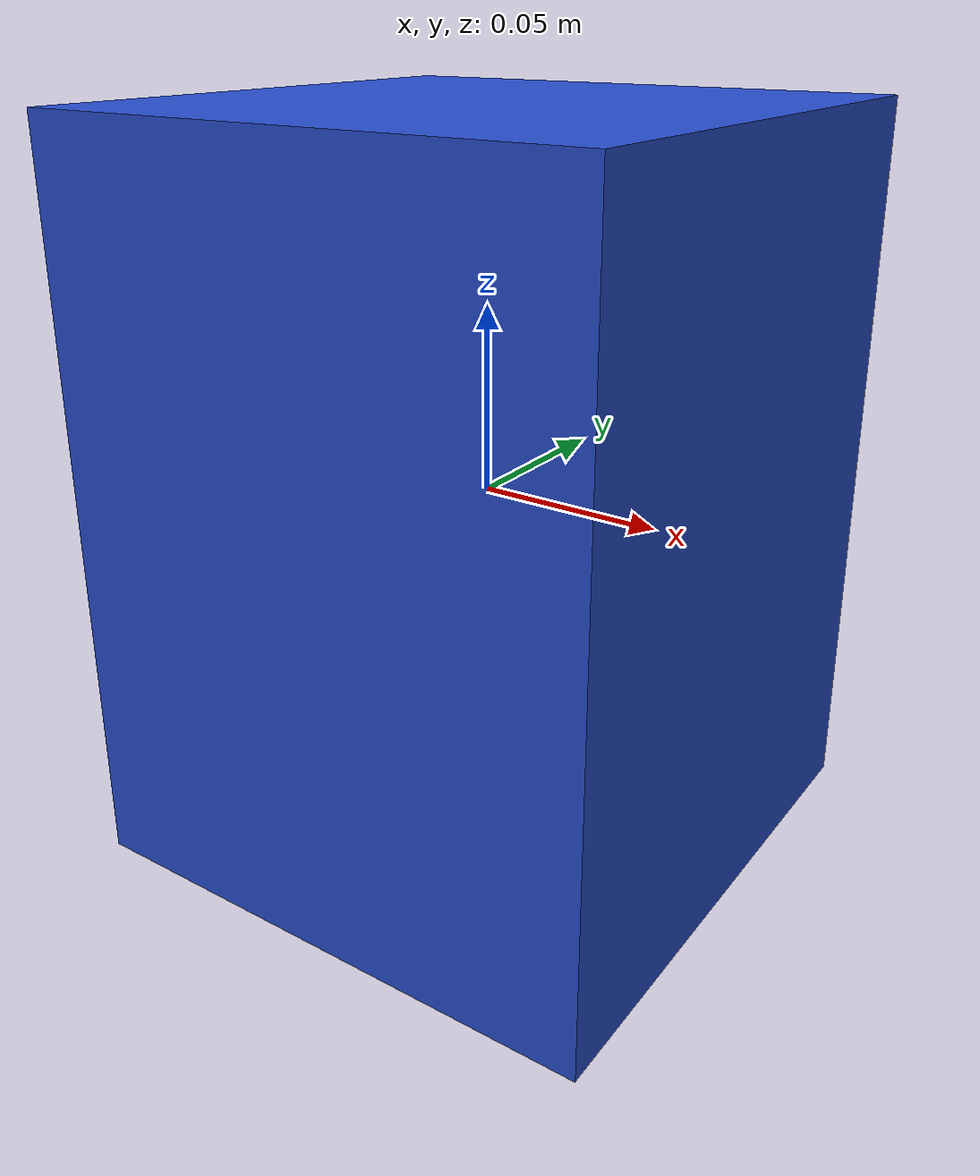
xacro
<?xml version="1.0"?>
<robot xmlns:xacro="http://wiki.ros.org/xacro">

  <xacro:macro name="robot_base"/>

    <link name="world"/>

  <joint name="fixed" type="fixed">
    <parent link="world"/>
    <child link="robot_base_link"/>
    <origin xyz="0.0 0.0 0.0" rpy="0.0 0.0 0.0" />
  </joint>

  <link name="robot_base_link">
    <visual>
      <origin xyz="0 0.0 0.0" rpy="0 0 0"/>
      <geometry>
        <box size="0.15 0.15 0.2"/>
      </geometry>
      <material name="blue"/>
    </visual>
    <collision>
      <origin xyz="0 0.0 0.0" rpy="0 0 0"/>
      <geometry>
        <box size="0.15 0.15 0.2"/>
      </geometry>
    </collision>
    <inertial>
      <origin xyz="0 0.0 0.0" rpy="0 0 0"/>
      <mass value="0.5" />
      <inertia ixx="1.0" ixy="0.0" ixz="0.0" iyy="1.0" iyz="0.0" izz="1.0" />
    </inertial>
  </link>
<gazebo reference="robot_base_link">
  <mu1>0</mu1>
  <mu2>0</mu2>
  <material>Gazebo/FlatBlack</material>
</gazebo>
</robot>
